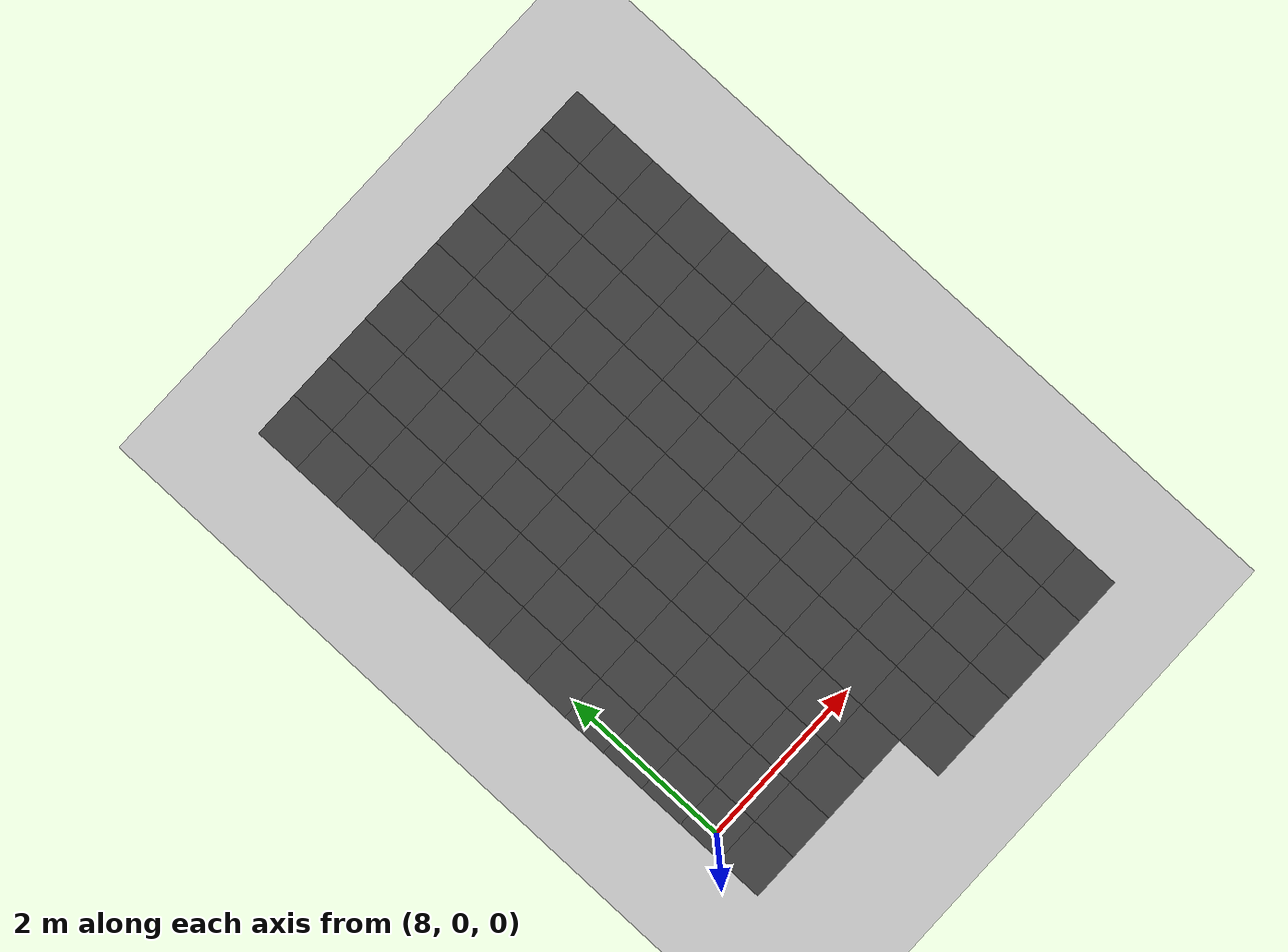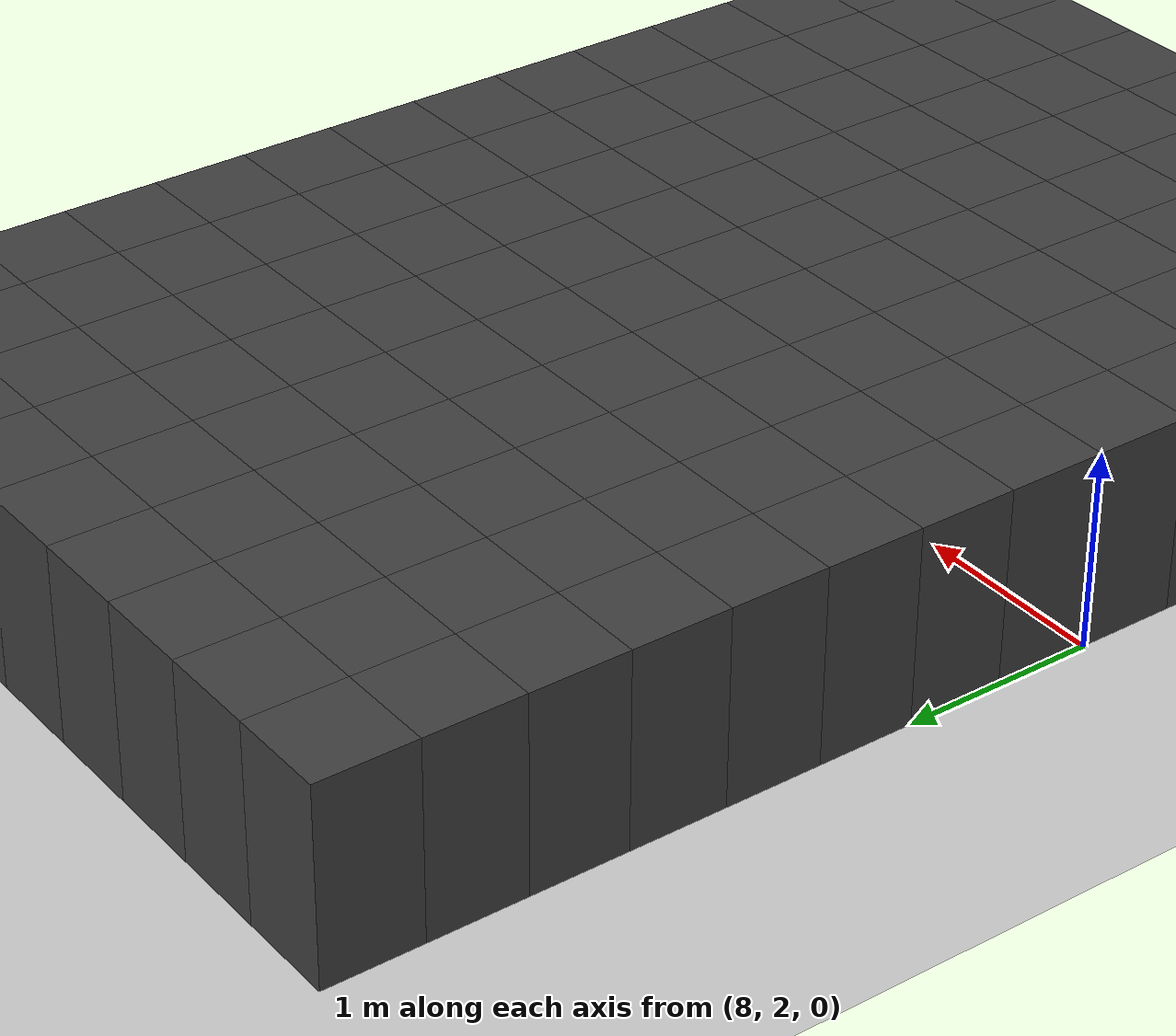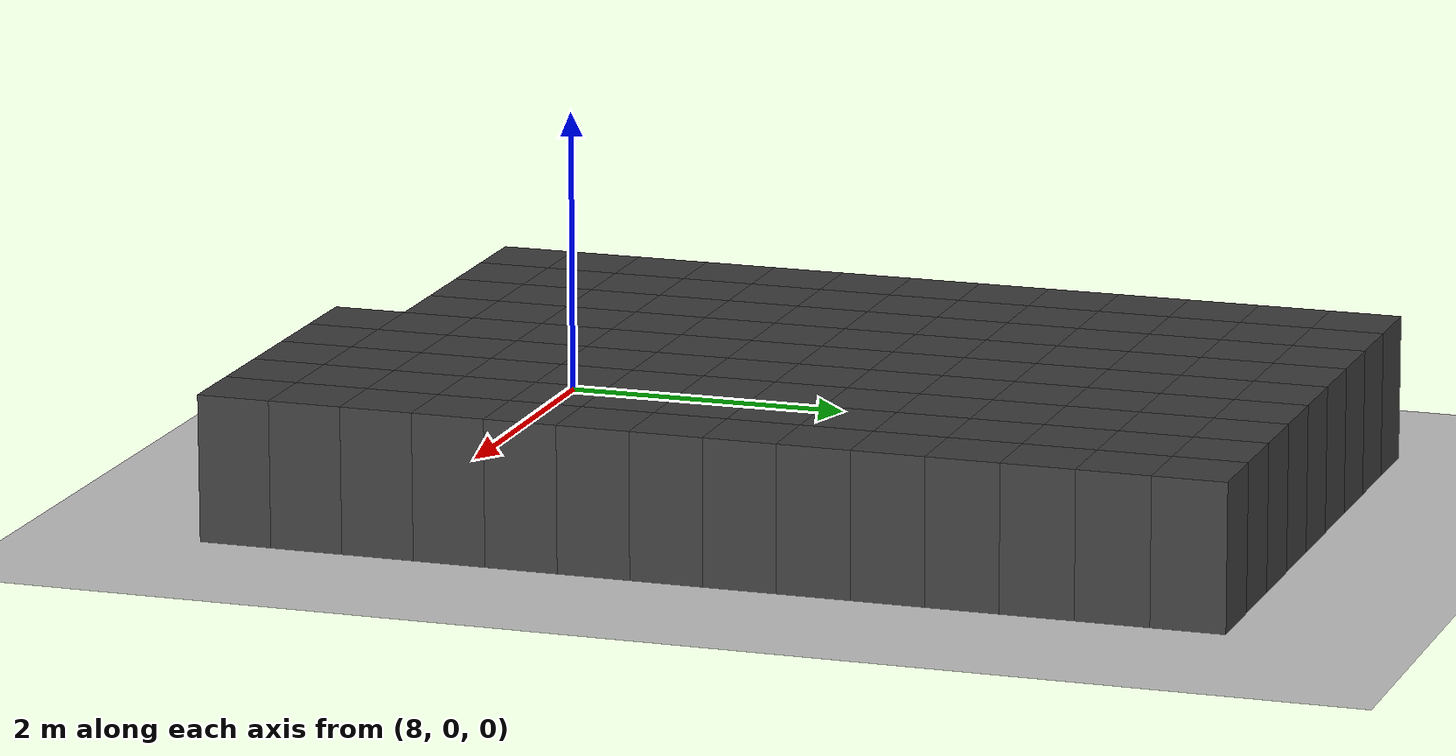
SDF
<sdf version="1.7">
 <world name="map_14510">
  <model name="ground_plane">
   <static>true</static>
   <link name="link">
    <collision name="collision">
     <geometry><plane><normal>0 0 1</normal><size>200 200</size></plane></geometry>
    </collision>
    <visual name="visual">
     <geometry><plane><normal>0 0 1</normal><size>200 200</size></plane></geometry>
     <material><ambient>0.8 0.8 0.8 1</ambient><diffuse>0.8 0.8 0.8 1</diffuse></material>
    </visual>
   </link>
  </model>
  <model name="maze_environment">
   <static>true</static>
   <link name="wall_442">
    <pose>8.250 5.750 0.500 0 0 0</pose>
    <collision name="col"><geometry><box><size>0.5 0.5 1.0</size></box></geometry></collision>
    <visual name="vis">
     <geometry><box><size>0.5 0.5 1.0</size></box></geometry>
     <material><ambient>0.15 0.15 0.15 1</ambient><diffuse>0.25 0.25 0.25 1</diffuse></material>
    </visual>
   </link>
   <link name="wall_443">
    <pose>8.750 5.750 0.500 0 0 0</pose>
    <collision name="col"><geometry><box><size>0.5 0.5 1.0</size></box></geometry></collision>
    <visual name="vis">
     <geometry><box><size>0.5 0.5 1.0</size></box></geometry>
     <material><ambient>0.15 0.15 0.15 1</ambient><diffuse>0.25 0.25 0.25 1</diffuse></material>
    </visual>
   </link>
   <link name="wall_444">
    <pose>9.250 5.750 0.500 0 0 0</pose>
    <collision name="col"><geometry><box><size>0.5 0.5 1.0</size></box></geometry></collision>
    <visual name="vis">
     <geometry><box><size>0.5 0.5 1.0</size></box></geometry>
     <material><ambient>0.15 0.15 0.15 1</ambient><diffuse>0.25 0.25 0.25 1</diffuse></material>
    </visual>
   </link>
   <link name="wall_445">
    <pose>9.750 5.750 0.500 0 0 0</pose>
    <collision name="col"><geometry><box><size>0.5 0.5 1.0</size></box></geometry></collision>
    <visual name="vis">
     <geometry><box><size>0.5 0.5 1.0</size></box></geometry>
     <material><ambient>0.15 0.15 0.15 1</ambient><diffuse>0.25 0.25 0.25 1</diffuse></material>
    </visual>
   </link>
   <link name="wall_446">
    <pose>10.250 5.750 0.500 0 0 0</pose>
    <collision name="col"><geometry><box><size>0.5 0.5 1.0</size></box></geometry></collision>
    <visual name="vis">
     <geometry><box><size>0.5 0.5 1.0</size></box></geometry>
     <material><ambient>0.15 0.15 0.15 1</ambient><diffuse>0.25 0.25 0.25 1</diffuse></material>
    </visual>
   </link>
   <link name="wall_447">
    <pose>10.750 5.750 0.500 0 0 0</pose>
    <collision name="col"><geometry><box><size>0.5 0.5 1.0</size></box></geometry></collision>
    <visual name="vis">
     <geometry><box><size>0.5 0.5 1.0</size></box></geometry>
     <material><ambient>0.15 0.15 0.15 1</ambient><diffuse>0.25 0.25 0.25 1</diffuse></material>
    </visual>
   </link>
   <link name="wall_448">
    <pose>11.250 5.750 0.500 0 0 0</pose>
    <collision name="col"><geometry><box><size>0.5 0.5 1.0</size></box></geometry></collision>
    <visual name="vis">
     <geometry><box><size>0.5 0.5 1.0</size></box></geometry>
     <material><ambient>0.15 0.15 0.15 1</ambient><diffuse>0.25 0.25 0.25 1</diffuse></material>
    </visual>
   </link>
   <link name="wall_449">
    <pose>11.750 5.750 0.500 0 0 0</pose>
    <collision name="col"><geometry><box><size>0.5 0.5 1.0</size></box></geometry></collision>
    <visual name="vis">
     <geometry><box><size>0.5 0.5 1.0</size></box></geometry>
     <material><ambient>0.15 0.15 0.15 1</ambient><diffuse>0.25 0.25 0.25 1</diffuse></material>
    </visual>
   </link>
   <link name="wall_450">
    <pose>12.250 5.750 0.500 0 0 0</pose>
    <collision name="col"><geometry><box><size>0.5 0.5 1.0</size></box></geometry></collision>
    <visual name="vis">
     <geometry><box><size>0.5 0.5 1.0</size></box></geometry>
     <material><ambient>0.15 0.15 0.15 1</ambient><diffuse>0.25 0.25 0.25 1</diffuse></material>
    </visual>
   </link>
   <link name="wall_475">
    <pose>8.250 5.250 0.500 0 0 0</pose>
    <collision name="col"><geometry><box><size>0.5 0.5 1.0</size></box></geometry></collision>
    <visual name="vis">
     <geometry><box><size>0.5 0.5 1.0</size></box></geometry>
     <material><ambient>0.15 0.15 0.15 1</ambient><diffuse>0.25 0.25 0.25 1</diffuse></material>
    </visual>
   </link>
   <link name="wall_476">
    <pose>8.750 5.250 0.500 0 0 0</pose>
    <collision name="col"><geometry><box><size>0.5 0.5 1.0</size></box></geometry></collision>
    <visual name="vis">
     <geometry><box><size>0.5 0.5 1.0</size></box></geometry>
     <material><ambient>0.15 0.15 0.15 1</ambient><diffuse>0.25 0.25 0.25 1</diffuse></material>
    </visual>
   </link>
   <link name="wall_477">
    <pose>9.250 5.250 0.500 0 0 0</pose>
    <collision name="col"><geometry><box><size>0.5 0.5 1.0</size></box></geometry></collision>
    <visual name="vis">
     <geometry><box><size>0.5 0.5 1.0</size></box></geometry>
     <material><ambient>0.15 0.15 0.15 1</ambient><diffuse>0.25 0.25 0.25 1</diffuse></material>
    </visual>
   </link>
   <link name="wall_478">
    <pose>9.750 5.250 0.500 0 0 0</pose>
    <collision name="col"><geometry><box><size>0.5 0.5 1.0</size></box></geometry></collision>
    <visual name="vis">
     <geometry><box><size>0.5 0.5 1.0</size></box></geometry>
     <material><ambient>0.15 0.15 0.15 1</ambient><diffuse>0.25 0.25 0.25 1</diffuse></material>
    </visual>
   </link>
   <link name="wall_479">
    <pose>10.250 5.250 0.500 0 0 0</pose>
    <collision name="col"><geometry><box><size>0.5 0.5 1.0</size></box></geometry></collision>
    <visual name="vis">
     <geometry><box><size>0.5 0.5 1.0</size></box></geometry>
     <material><ambient>0.15 0.15 0.15 1</ambient><diffuse>0.25 0.25 0.25 1</diffuse></material>
    </visual>
   </link>
   <link name="wall_480">
    <pose>10.750 5.250 0.500 0 0 0</pose>
    <collision name="col"><geometry><box><size>0.5 0.5 1.0</size></box></geometry></collision>
    <visual name="vis">
     <geometry><box><size>0.5 0.5 1.0</size></box></geometry>
     <material><ambient>0.15 0.15 0.15 1</ambient><diffuse>0.25 0.25 0.25 1</diffuse></material>
    </visual>
   </link>
   <link name="wall_481">
    <pose>11.250 5.250 0.500 0 0 0</pose>
    <collision name="col"><geometry><box><size>0.5 0.5 1.0</size></box></geometry></collision>
    <visual name="vis">
     <geometry><box><size>0.5 0.5 1.0</size></box></geometry>
     <material><ambient>0.15 0.15 0.15 1</ambient><diffuse>0.25 0.25 0.25 1</diffuse></material>
    </visual>
   </link>
   <link name="wall_482">
    <pose>11.750 5.250 0.500 0 0 0</pose>
    <collision name="col"><geometry><box><size>0.5 0.5 1.0</size></box></geometry></collision>
    <visual name="vis">
     <geometry><box><size>0.5 0.5 1.0</size></box></geometry>
     <material><ambient>0.15 0.15 0.15 1</ambient><diffuse>0.25 0.25 0.25 1</diffuse></material>
    </visual>
   </link>
   <link name="wall_483">
    <pose>12.250 5.250 0.500 0 0 0</pose>
    <collision name="col"><geometry><box><size>0.5 0.5 1.0</size></box></geometry></collision>
    <visual name="vis">
     <geometry><box><size>0.5 0.5 1.0</size></box></geometry>
     <material><ambient>0.15 0.15 0.15 1</ambient><diffuse>0.25 0.25 0.25 1</diffuse></material>
    </visual>
   </link>
   <link name="wall_509">
    <pose>8.250 4.750 0.500 0 0 0</pose>
    <collision name="col"><geometry><box><size>0.5 0.5 1.0</size></box></geometry></collision>
    <visual name="vis">
     <geometry><box><size>0.5 0.5 1.0</size></box></geometry>
     <material><ambient>0.15 0.15 0.15 1</ambient><diffuse>0.25 0.25 0.25 1</diffuse></material>
    </visual>
   </link>
   <link name="wall_510">
    <pose>8.750 4.750 0.500 0 0 0</pose>
    <collision name="col"><geometry><box><size>0.5 0.5 1.0</size></box></geometry></collision>
    <visual name="vis">
     <geometry><box><size>0.5 0.5 1.0</size></box></geometry>
     <material><ambient>0.15 0.15 0.15 1</ambient><diffuse>0.25 0.25 0.25 1</diffuse></material>
    </visual>
   </link>
   <link name="wall_511">
    <pose>9.250 4.750 0.500 0 0 0</pose>
    <collision name="col"><geometry><box><size>0.5 0.5 1.0</size></box></geometry></collision>
    <visual name="vis">
     <geometry><box><size>0.5 0.5 1.0</size></box></geometry>
     <material><ambient>0.15 0.15 0.15 1</ambient><diffuse>0.25 0.25 0.25 1</diffuse></material>
    </visual>
   </link>
   <link name="wall_512">
    <pose>9.750 4.750 0.500 0 0 0</pose>
    <collision name="col"><geometry><box><size>0.5 0.5 1.0</size></box></geometry></collision>
    <visual name="vis">
     <geometry><box><size>0.5 0.5 1.0</size></box></geometry>
     <material><ambient>0.15 0.15 0.15 1</ambient><diffuse>0.25 0.25 0.25 1</diffuse></material>
    </visual>
   </link>
   <link name="wall_513">
    <pose>10.250 4.750 0.500 0 0 0</pose>
    <collision name="col"><geometry><box><size>0.5 0.5 1.0</size></box></geometry></collision>
    <visual name="vis">
     <geometry><box><size>0.5 0.5 1.0</size></box></geometry>
     <material><ambient>0.15 0.15 0.15 1</ambient><diffuse>0.25 0.25 0.25 1</diffuse></material>
    </visual>
   </link>
   <link name="wall_514">
    <pose>10.750 4.750 0.500 0 0 0</pose>
    <collision name="col"><geometry><box><size>0.5 0.5 1.0</size></box></geometry></collision>
    <visual name="vis">
     <geometry><box><size>0.5 0.5 1.0</size></box></geometry>
     <material><ambient>0.15 0.15 0.15 1</ambient><diffuse>0.25 0.25 0.25 1</diffuse></material>
    </visual>
   </link>
   <link name="wall_515">
    <pose>11.250 4.750 0.500 0 0 0</pose>
    <collision name="col"><geometry><box><size>0.5 0.5 1.0</size></box></geometry></collision>
    <visual name="vis">
     <geometry><box><size>0.5 0.5 1.0</size></box></geometry>
     <material><ambient>0.15 0.15 0.15 1</ambient><diffuse>0.25 0.25 0.25 1</diffuse></material>
    </visual>
   </link>
   <link name="wall_516">
    <pose>11.750 4.750 0.500 0 0 0</pose>
    <collision name="col"><geometry><box><size>0.5 0.5 1.0</size></box></geometry></collision>
    <visual name="vis">
     <geometry><box><size>0.5 0.5 1.0</size></box></geometry>
     <material><ambient>0.15 0.15 0.15 1</ambient><diffuse>0.25 0.25 0.25 1</diffuse></material>
    </visual>
   </link>
   <link name="wall_517">
    <pose>12.250 4.750 0.500 0 0 0</pose>
    <collision name="col"><geometry><box><size>0.5 0.5 1.0</size></box></geometry></collision>
    <visual name="vis">
     <geometry><box><size>0.5 0.5 1.0</size></box></geometry>
     <material><ambient>0.15 0.15 0.15 1</ambient><diffuse>0.25 0.25 0.25 1</diffuse></material>
    </visual>
   </link>
   <link name="wall_543">
    <pose>8.250 4.250 0.500 0 0 0</pose>
    <collision name="col"><geometry><box><size>0.5 0.5 1.0</size></box></geometry></collision>
    <visual name="vis">
     <geometry><box><size>0.5 0.5 1.0</size></box></geometry>
     <material><ambient>0.15 0.15 0.15 1</ambient><diffuse>0.25 0.25 0.25 1</diffuse></material>
    </visual>
   </link>
   <link name="wall_544">
    <pose>8.750 4.250 0.500 0 0 0</pose>
    <collision name="col"><geometry><box><size>0.5 0.5 1.0</size></box></geometry></collision>
    <visual name="vis">
     <geometry><box><size>0.5 0.5 1.0</size></box></geometry>
     <material><ambient>0.15 0.15 0.15 1</ambient><diffuse>0.25 0.25 0.25 1</diffuse></material>
    </visual>
   </link>
   <link name="wall_545">
    <pose>9.250 4.250 0.500 0 0 0</pose>
    <collision name="col"><geometry><box><size>0.5 0.5 1.0</size></box></geometry></collision>
    <visual name="vis">
     <geometry><box><size>0.5 0.5 1.0</size></box></geometry>
     <material><ambient>0.15 0.15 0.15 1</ambient><diffuse>0.25 0.25 0.25 1</diffuse></material>
    </visual>
   </link>
   <link name="wall_546">
    <pose>9.750 4.250 0.500 0 0 0</pose>
    <collision name="col"><geometry><box><size>0.5 0.5 1.0</size></box></geometry></collision>
    <visual name="vis">
     <geometry><box><size>0.5 0.5 1.0</size></box></geometry>
     <material><ambient>0.15 0.15 0.15 1</ambient><diffuse>0.25 0.25 0.25 1</diffuse></material>
    </visual>
   </link>
   <link name="wall_547">
    <pose>10.250 4.250 0.500 0 0 0</pose>
    <collision name="col"><geometry><box><size>0.5 0.5 1.0</size></box></geometry></collision>
    <visual name="vis">
     <geometry><box><size>0.5 0.5 1.0</size></box></geometry>
     <material><ambient>0.15 0.15 0.15 1</ambient><diffuse>0.25 0.25 0.25 1</diffuse></material>
    </visual>
   </link>
   <link name="wall_548">
    <pose>10.750 4.250 0.500 0 0 0</pose>
    <collision name="col"><geometry><box><size>0.5 0.5 1.0</size></box></geometry></collision>
    <visual name="vis">
     <geometry><box><size>0.5 0.5 1.0</size></box></geometry>
     <material><ambient>0.15 0.15 0.15 1</ambient><diffuse>0.25 0.25 0.25 1</diffuse></material>
    </visual>
   </link>
   <link name="wall_549">
    <pose>11.250 4.250 0.500 0 0 0</pose>
    <collision name="col"><geometry><box><size>0.5 0.5 1.0</size></box></geometry></collision>
    <visual name="vis">
     <geometry><box><size>0.5 0.5 1.0</size></box></geometry>
     <material><ambient>0.15 0.15 0.15 1</ambient><diffuse>0.25 0.25 0.25 1</diffuse></material>
    </visual>
   </link>
   <link name="wall_550">
    <pose>11.750 4.250 0.500 0 0 0</pose>
    <collision name="col"><geometry><box><size>0.5 0.5 1.0</size></box></geometry></collision>
    <visual name="vis">
     <geometry><box><size>0.5 0.5 1.0</size></box></geometry>
     <material><ambient>0.15 0.15 0.15 1</ambient><diffuse>0.25 0.25 0.25 1</diffuse></material>
    </visual>
   </link>
   <link name="wall_551">
    <pose>12.250 4.250 0.500 0 0 0</pose>
    <collision name="col"><geometry><box><size>0.5 0.5 1.0</size></box></geometry></collision>
    <visual name="vis">
     <geometry><box><size>0.5 0.5 1.0</size></box></geometry>
     <material><ambient>0.15 0.15 0.15 1</ambient><diffuse>0.25 0.25 0.25 1</diffuse></material>
    </visual>
   </link>
   <link name="wall_585">
    <pose>8.250 3.750 0.500 0 0 0</pose>
    <collision name="col"><geometry><box><size>0.5 0.5 1.0</size></box></geometry></collision>
    <visual name="vis">
     <geometry><box><size>0.5 0.5 1.0</size></box></geometry>
     <material><ambient>0.15 0.15 0.15 1</ambient><diffuse>0.25 0.25 0.25 1</diffuse></material>
    </visual>
   </link>
   <link name="wall_586">
    <pose>8.750 3.750 0.500 0 0 0</pose>
    <collision name="col"><geometry><box><size>0.5 0.5 1.0</size></box></geometry></collision>
    <visual name="vis">
     <geometry><box><size>0.5 0.5 1.0</size></box></geometry>
     <material><ambient>0.15 0.15 0.15 1</ambient><diffuse>0.25 0.25 0.25 1</diffuse></material>
    </visual>
   </link>
   <link name="wall_587">
    <pose>9.250 3.750 0.500 0 0 0</pose>
    <collision name="col"><geometry><box><size>0.5 0.5 1.0</size></box></geometry></collision>
    <visual name="vis">
     <geometry><box><size>0.5 0.5 1.0</size></box></geometry>
     <material><ambient>0.15 0.15 0.15 1</ambient><diffuse>0.25 0.25 0.25 1</diffuse></material>
    </visual>
   </link>
   <link name="wall_588">
    <pose>9.750 3.750 0.500 0 0 0</pose>
    <collision name="col"><geometry><box><size>0.5 0.5 1.0</size></box></geometry></collision>
    <visual name="vis">
     <geometry><box><size>0.5 0.5 1.0</size></box></geometry>
     <material><ambient>0.15 0.15 0.15 1</ambient><diffuse>0.25 0.25 0.25 1</diffuse></material>
    </visual>
   </link>
   <link name="wall_589">
    <pose>10.250 3.750 0.500 0 0 0</pose>
    <collision name="col"><geometry><box><size>0.5 0.5 1.0</size></box></geometry></collision>
    <visual name="vis">
     <geometry><box><size>0.5 0.5 1.0</size></box></geometry>
     <material><ambient>0.15 0.15 0.15 1</ambient><diffuse>0.25 0.25 0.25 1</diffuse></material>
    </visual>
   </link>
   <link name="wall_590">
    <pose>10.750 3.750 0.500 0 0 0</pose>
    <collision name="col"><geometry><box><size>0.5 0.5 1.0</size></box></geometry></collision>
    <visual name="vis">
     <geometry><box><size>0.5 0.5 1.0</size></box></geometry>
     <material><ambient>0.15 0.15 0.15 1</ambient><diffuse>0.25 0.25 0.25 1</diffuse></material>
    </visual>
   </link>
   <link name="wall_591">
    <pose>11.250 3.750 0.500 0 0 0</pose>
    <collision name="col"><geometry><box><size>0.5 0.5 1.0</size></box></geometry></collision>
    <visual name="vis">
     <geometry><box><size>0.5 0.5 1.0</size></box></geometry>
     <material><ambient>0.15 0.15 0.15 1</ambient><diffuse>0.25 0.25 0.25 1</diffuse></material>
    </visual>
   </link>
   <link name="wall_592">
    <pose>11.750 3.750 0.500 0 0 0</pose>
    <collision name="col"><geometry><box><size>0.5 0.5 1.0</size></box></geometry></collision>
    <visual name="vis">
     <geometry><box><size>0.5 0.5 1.0</size></box></geometry>
     <material><ambient>0.15 0.15 0.15 1</ambient><diffuse>0.25 0.25 0.25 1</diffuse></material>
    </visual>
   </link>
   <link name="wall_593">
    <pose>12.250 3.750 0.500 0 0 0</pose>
    <collision name="col"><geometry><box><size>0.5 0.5 1.0</size></box></geometry></collision>
    <visual name="vis">
     <geometry><box><size>0.5 0.5 1.0</size></box></geometry>
     <material><ambient>0.15 0.15 0.15 1</ambient><diffuse>0.25 0.25 0.25 1</diffuse></material>
    </visual>
   </link>
   <link name="wall_625">
    <pose>8.250 3.250 0.500 0 0 0</pose>
    <collision name="col"><geometry><box><size>0.5 0.5 1.0</size></box></geometry></collision>
    <visual name="vis">
     <geometry><box><size>0.5 0.5 1.0</size></box></geometry>
     <material><ambient>0.15 0.15 0.15 1</ambient><diffuse>0.25 0.25 0.25 1</diffuse></material>
    </visual>
   </link>
   <link name="wall_626">
    <pose>8.750 3.250 0.500 0 0 0</pose>
    <collision name="col"><geometry><box><size>0.5 0.5 1.0</size></box></geometry></collision>
    <visual name="vis">
     <geometry><box><size>0.5 0.5 1.0</size></box></geometry>
     <material><ambient>0.15 0.15 0.15 1</ambient><diffuse>0.25 0.25 0.25 1</diffuse></material>
    </visual>
   </link>
   <link name="wall_627">
    <pose>9.250 3.250 0.500 0 0 0</pose>
    <collision name="col"><geometry><box><size>0.5 0.5 1.0</size></box></geometry></collision>
    <visual name="vis">
     <geometry><box><size>0.5 0.5 1.0</size></box></geometry>
     <material><ambient>0.15 0.15 0.15 1</ambient><diffuse>0.25 0.25 0.25 1</diffuse></material>
    </visual>
   </link>
   <link name="wall_628">
    <pose>9.750 3.250 0.500 0 0 0</pose>
    <collision name="col"><geometry><box><size>0.5 0.5 1.0</size></box></geometry></collision>
    <visual name="vis">
     <geometry><box><size>0.5 0.5 1.0</size></box></geometry>
     <material><ambient>0.15 0.15 0.15 1</ambient><diffuse>0.25 0.25 0.25 1</diffuse></material>
    </visual>
   </link>
   <link name="wall_629">
    <pose>10.250 3.250 0.500 0 0 0</pose>
    <collision name="col"><geometry><box><size>0.5 0.5 1.0</size></box></geometry></collision>
    <visual name="vis">
     <geometry><box><size>0.5 0.5 1.0</size></box></geometry>
     <material><ambient>0.15 0.15 0.15 1</ambient><diffuse>0.25 0.25 0.25 1</diffuse></material>
    </visual>
   </link>
   <link name="wall_630">
    <pose>10.750 3.250 0.500 0 0 0</pose>
    <collision name="col"><geometry><box><size>0.5 0.5 1.0</size></box></geometry></collision>
    <visual name="vis">
     <geometry><box><size>0.5 0.5 1.0</size></box></geometry>
     <material><ambient>0.15 0.15 0.15 1</ambient><diffuse>0.25 0.25 0.25 1</diffuse></material>
    </visual>
   </link>
   <link name="wall_631">
    <pose>11.250 3.250 0.500 0 0 0</pose>
    <collision name="col"><geometry><box><size>0.5 0.5 1.0</size></box></geometry></collision>
    <visual name="vis">
     <geometry><box><size>0.5 0.5 1.0</size></box></geometry>
     <material><ambient>0.15 0.15 0.15 1</ambient><diffuse>0.25 0.25 0.25 1</diffuse></material>
    </visual>
   </link>
   <link name="wall_632">
    <pose>11.750 3.250 0.500 0 0 0</pose>
    <collision name="col"><geometry><box><size>0.5 0.5 1.0</size></box></geometry></collision>
    <visual name="vis">
     <geometry><box><size>0.5 0.5 1.0</size></box></geometry>
     <material><ambient>0.15 0.15 0.15 1</ambient><diffuse>0.25 0.25 0.25 1</diffuse></material>
    </visual>
   </link>
   <link name="wall_633">
    <pose>12.250 3.250 0.500 0 0 0</pose>
    <collision name="col"><geometry><box><size>0.5 0.5 1.0</size></box></geometry></collision>
    <visual name="vis">
     <geometry><box><size>0.5 0.5 1.0</size></box></geometry>
     <material><ambient>0.15 0.15 0.15 1</ambient><diffuse>0.25 0.25 0.25 1</diffuse></material>
    </visual>
   </link>
   <link name="wall_667">
    <pose>8.250 2.750 0.500 0 0 0</pose>
    <collision name="col"><geometry><box><size>0.5 0.5 1.0</size></box></geometry></collision>
    <visual name="vis">
     <geometry><box><size>0.5 0.5 1.0</size></box></geometry>
     <material><ambient>0.15 0.15 0.15 1</ambient><diffuse>0.25 0.25 0.25 1</diffuse></material>
    </visual>
   </link>
   <link name="wall_668">
    <pose>8.750 2.750 0.500 0 0 0</pose>
    <collision name="col"><geometry><box><size>0.5 0.5 1.0</size></box></geometry></collision>
    <visual name="vis">
     <geometry><box><size>0.5 0.5 1.0</size></box></geometry>
     <material><ambient>0.15 0.15 0.15 1</ambient><diffuse>0.25 0.25 0.25 1</diffuse></material>
    </visual>
   </link>
   <link name="wall_669">
    <pose>9.250 2.750 0.500 0 0 0</pose>
    <collision name="col"><geometry><box><size>0.5 0.5 1.0</size></box></geometry></collision>
    <visual name="vis">
     <geometry><box><size>0.5 0.5 1.0</size></box></geometry>
     <material><ambient>0.15 0.15 0.15 1</ambient><diffuse>0.25 0.25 0.25 1</diffuse></material>
    </visual>
   </link>
   <link name="wall_670">
    <pose>9.750 2.750 0.500 0 0 0</pose>
    <collision name="col"><geometry><box><size>0.5 0.5 1.0</size></box></geometry></collision>
    <visual name="vis">
     <geometry><box><size>0.5 0.5 1.0</size></box></geometry>
     <material><ambient>0.15 0.15 0.15 1</ambient><diffuse>0.25 0.25 0.25 1</diffuse></material>
    </visual>
   </link>
   <link name="wall_671">
    <pose>10.250 2.750 0.500 0 0 0</pose>
    <collision name="col"><geometry><box><size>0.5 0.5 1.0</size></box></geometry></collision>
    <visual name="vis">
     <geometry><box><size>0.5 0.5 1.0</size></box></geometry>
     <material><ambient>0.15 0.15 0.15 1</ambient><diffuse>0.25 0.25 0.25 1</diffuse></material>
    </visual>
   </link>
   <link name="wall_672">
    <pose>10.750 2.750 0.500 0 0 0</pose>
    <collision name="col"><geometry><box><size>0.5 0.5 1.0</size></box></geometry></collision>
    <visual name="vis">
     <geometry><box><size>0.5 0.5 1.0</size></box></geometry>
     <material><ambient>0.15 0.15 0.15 1</ambient><diffuse>0.25 0.25 0.25 1</diffuse></material>
    </visual>
   </link>
   <link name="wall_673">
    <pose>11.250 2.750 0.500 0 0 0</pose>
    <collision name="col"><geometry><box><size>0.5 0.5 1.0</size></box></geometry></collision>
    <visual name="vis">
     <geometry><box><size>0.5 0.5 1.0</size></box></geometry>
     <material><ambient>0.15 0.15 0.15 1</ambient><diffuse>0.25 0.25 0.25 1</diffuse></material>
    </visual>
   </link>
   <link name="wall_674">
    <pose>11.750 2.750 0.500 0 0 0</pose>
    <collision name="col"><geometry><box><size>0.5 0.5 1.0</size></box></geometry></collision>
    <visual name="vis">
     <geometry><box><size>0.5 0.5 1.0</size></box></geometry>
     <material><ambient>0.15 0.15 0.15 1</ambient><diffuse>0.25 0.25 0.25 1</diffuse></material>
    </visual>
   </link>
   <link name="wall_675">
    <pose>12.250 2.750 0.500 0 0 0</pose>
    <collision name="col"><geometry><box><size>0.5 0.5 1.0</size></box></geometry></collision>
    <visual name="vis">
     <geometry><box><size>0.5 0.5 1.0</size></box></geometry>
     <material><ambient>0.15 0.15 0.15 1</ambient><diffuse>0.25 0.25 0.25 1</diffuse></material>
    </visual>
   </link>
   <link name="wall_705">
    <pose>8.250 2.250 0.500 0 0 0</pose>
    <collision name="col"><geometry><box><size>0.5 0.5 1.0</size></box></geometry></collision>
    <visual name="vis">
     <geometry><box><size>0.5 0.5 1.0</size></box></geometry>
     <material><ambient>0.15 0.15 0.15 1</ambient><diffuse>0.25 0.25 0.25 1</diffuse></material>
    </visual>
   </link>
   <link name="wall_706">
    <pose>8.750 2.250 0.500 0 0 0</pose>
    <collision name="col"><geometry><box><size>0.5 0.5 1.0</size></box></geometry></collision>
    <visual name="vis">
     <geometry><box><size>0.5 0.5 1.0</size></box></geometry>
     <material><ambient>0.15 0.15 0.15 1</ambient><diffuse>0.25 0.25 0.25 1</diffuse></material>
    </visual>
   </link>
   <link name="wall_707">
    <pose>9.250 2.250 0.500 0 0 0</pose>
    <collision name="col"><geometry><box><size>0.5 0.5 1.0</size></box></geometry></collision>
    <visual name="vis">
     <geometry><box><size>0.5 0.5 1.0</size></box></geometry>
     <material><ambient>0.15 0.15 0.15 1</ambient><diffuse>0.25 0.25 0.25 1</diffuse></material>
    </visual>
   </link>
   <link name="wall_708">
    <pose>9.750 2.250 0.500 0 0 0</pose>
    <collision name="col"><geometry><box><size>0.5 0.5 1.0</size></box></geometry></collision>
    <visual name="vis">
     <geometry><box><size>0.5 0.5 1.0</size></box></geometry>
     <material><ambient>0.15 0.15 0.15 1</ambient><diffuse>0.25 0.25 0.25 1</diffuse></material>
    </visual>
   </link>
   <link name="wall_709">
    <pose>10.250 2.250 0.500 0 0 0</pose>
    <collision name="col"><geometry><box><size>0.5 0.5 1.0</size></box></geometry></collision>
    <visual name="vis">
     <geometry><box><size>0.5 0.5 1.0</size></box></geometry>
     <material><ambient>0.15 0.15 0.15 1</ambient><diffuse>0.25 0.25 0.25 1</diffuse></material>
    </visual>
   </link>
   <link name="wall_710">
    <pose>10.750 2.250 0.500 0 0 0</pose>
    <collision name="col"><geometry><box><size>0.5 0.5 1.0</size></box></geometry></collision>
    <visual name="vis">
     <geometry><box><size>0.5 0.5 1.0</size></box></geometry>
     <material><ambient>0.15 0.15 0.15 1</ambient><diffuse>0.25 0.25 0.25 1</diffuse></material>
    </visual>
   </link>
   <link name="wall_711">
    <pose>11.250 2.250 0.500 0 0 0</pose>
    <collision name="col"><geometry><box><size>0.5 0.5 1.0</size></box></geometry></collision>
    <visual name="vis">
     <geometry><box><size>0.5 0.5 1.0</size></box></geometry>
     <material><ambient>0.15 0.15 0.15 1</ambient><diffuse>0.25 0.25 0.25 1</diffuse></material>
    </visual>
   </link>
   <link name="wall_712">
    <pose>11.750 2.250 0.500 0 0 0</pose>
    <collision name="col"><geometry><box><size>0.5 0.5 1.0</size></box></geometry></collision>
    <visual name="vis">
     <geometry><box><size>0.5 0.5 1.0</size></box></geometry>
     <material><ambient>0.15 0.15 0.15 1</ambient><diffuse>0.25 0.25 0.25 1</diffuse></material>
    </visual>
   </link>
   <link name="wall_713">
    <pose>12.250 2.250 0.500 0 0 0</pose>
    <collision name="col"><geometry><box><size>0.5 0.5 1.0</size></box></geometry></collision>
    <visual name="vis">
     <geometry><box><size>0.5 0.5 1.0</size></box></geometry>
     <material><ambient>0.15 0.15 0.15 1</ambient><diffuse>0.25 0.25 0.25 1</diffuse></material>
    </visual>
   </link>
   <link name="wall_743">
    <pose>8.250 1.750 0.500 0 0 0</pose>
    <collision name="col"><geometry><box><size>0.5 0.5 1.0</size></box></geometry></collision>
    <visual name="vis">
     <geometry><box><size>0.5 0.5 1.0</size></box></geometry>
     <material><ambient>0.15 0.15 0.15 1</ambient><diffuse>0.25 0.25 0.25 1</diffuse></material>
    </visual>
   </link>
   <link name="wall_744">
    <pose>8.750 1.750 0.500 0 0 0</pose>
    <collision name="col"><geometry><box><size>0.5 0.5 1.0</size></box></geometry></collision>
    <visual name="vis">
     <geometry><box><size>0.5 0.5 1.0</size></box></geometry>
     <material><ambient>0.15 0.15 0.15 1</ambient><diffuse>0.25 0.25 0.25 1</diffuse></material>
    </visual>
   </link>
   <link name="wall_745">
    <pose>9.250 1.750 0.500 0 0 0</pose>
    <collision name="col"><geometry><box><size>0.5 0.5 1.0</size></box></geometry></collision>
    <visual name="vis">
     <geometry><box><size>0.5 0.5 1.0</size></box></geometry>
     <material><ambient>0.15 0.15 0.15 1</ambient><diffuse>0.25 0.25 0.25 1</diffuse></material>
    </visual>
   </link>
   <link name="wall_746">
    <pose>9.750 1.750 0.500 0 0 0</pose>
    <collision name="col"><geometry><box><size>0.5 0.5 1.0</size></box></geometry></collision>
    <visual name="vis">
     <geometry><box><size>0.5 0.5 1.0</size></box></geometry>
     <material><ambient>0.15 0.15 0.15 1</ambient><diffuse>0.25 0.25 0.25 1</diffuse></material>
    </visual>
   </link>
   <link name="wall_747">
    <pose>10.250 1.750 0.500 0 0 0</pose>
    <collision name="col"><geometry><box><size>0.5 0.5 1.0</size></box></geometry></collision>
    <visual name="vis">
     <geometry><box><size>0.5 0.5 1.0</size></box></geometry>
     <material><ambient>0.15 0.15 0.15 1</ambient><diffuse>0.25 0.25 0.25 1</diffuse></material>
    </visual>
   </link>
   <link name="wall_748">
    <pose>10.750 1.750 0.500 0 0 0</pose>
    <collision name="col"><geometry><box><size>0.5 0.5 1.0</size></box></geometry></collision>
    <visual name="vis">
     <geometry><box><size>0.5 0.5 1.0</size></box></geometry>
     <material><ambient>0.15 0.15 0.15 1</ambient><diffuse>0.25 0.25 0.25 1</diffuse></material>
    </visual>
   </link>
   <link name="wall_749">
    <pose>11.250 1.750 0.500 0 0 0</pose>
    <collision name="col"><geometry><box><size>0.5 0.5 1.0</size></box></geometry></collision>
    <visual name="vis">
     <geometry><box><size>0.5 0.5 1.0</size></box></geometry>
     <material><ambient>0.15 0.15 0.15 1</ambient><diffuse>0.25 0.25 0.25 1</diffuse></material>
    </visual>
   </link>
   <link name="wall_750">
    <pose>11.750 1.750 0.500 0 0 0</pose>
    <collision name="col"><geometry><box><size>0.5 0.5 1.0</size></box></geometry></collision>
    <visual name="vis">
     <geometry><box><size>0.5 0.5 1.0</size></box></geometry>
     <material><ambient>0.15 0.15 0.15 1</ambient><diffuse>0.25 0.25 0.25 1</diffuse></material>
    </visual>
   </link>
   <link name="wall_751">
    <pose>12.250 1.750 0.500 0 0 0</pose>
    <collision name="col"><geometry><box><size>0.5 0.5 1.0</size></box></geometry></collision>
    <visual name="vis">
     <geometry><box><size>0.5 0.5 1.0</size></box></geometry>
     <material><ambient>0.15 0.15 0.15 1</ambient><diffuse>0.25 0.25 0.25 1</diffuse></material>
    </visual>
   </link>
   <link name="wall_780">
    <pose>8.250 1.250 0.500 0 0 0</pose>
    <collision name="col"><geometry><box><size>0.5 0.5 1.0</size></box></geometry></collision>
    <visual name="vis">
     <geometry><box><size>0.5 0.5 1.0</size></box></geometry>
     <material><ambient>0.15 0.15 0.15 1</ambient><diffuse>0.25 0.25 0.25 1</diffuse></material>
    </visual>
   </link>
   <link name="wall_781">
    <pose>8.750 1.250 0.500 0 0 0</pose>
    <collision name="col"><geometry><box><size>0.5 0.5 1.0</size></box></geometry></collision>
    <visual name="vis">
     <geometry><box><size>0.5 0.5 1.0</size></box></geometry>
     <material><ambient>0.15 0.15 0.15 1</ambient><diffuse>0.25 0.25 0.25 1</diffuse></material>
    </visual>
   </link>
   <link name="wall_782">
    <pose>9.250 1.250 0.500 0 0 0</pose>
    <collision name="col"><geometry><box><size>0.5 0.5 1.0</size></box></geometry></collision>
    <visual name="vis">
     <geometry><box><size>0.5 0.5 1.0</size></box></geometry>
     <material><ambient>0.15 0.15 0.15 1</ambient><diffuse>0.25 0.25 0.25 1</diffuse></material>
    </visual>
   </link>
   <link name="wall_783">
    <pose>9.750 1.250 0.500 0 0 0</pose>
    <collision name="col"><geometry><box><size>0.5 0.5 1.0</size></box></geometry></collision>
    <visual name="vis">
     <geometry><box><size>0.5 0.5 1.0</size></box></geometry>
     <material><ambient>0.15 0.15 0.15 1</ambient><diffuse>0.25 0.25 0.25 1</diffuse></material>
    </visual>
   </link>
   <link name="wall_784">
    <pose>10.250 1.250 0.500 0 0 0</pose>
    <collision name="col"><geometry><box><size>0.5 0.5 1.0</size></box></geometry></collision>
    <visual name="vis">
     <geometry><box><size>0.5 0.5 1.0</size></box></geometry>
     <material><ambient>0.15 0.15 0.15 1</ambient><diffuse>0.25 0.25 0.25 1</diffuse></material>
    </visual>
   </link>
   <link name="wall_785">
    <pose>10.750 1.250 0.500 0 0 0</pose>
    <collision name="col"><geometry><box><size>0.5 0.5 1.0</size></box></geometry></collision>
    <visual name="vis">
     <geometry><box><size>0.5 0.5 1.0</size></box></geometry>
     <material><ambient>0.15 0.15 0.15 1</ambient><diffuse>0.25 0.25 0.25 1</diffuse></material>
    </visual>
   </link>
   <link name="wall_786">
    <pose>11.250 1.250 0.500 0 0 0</pose>
    <collision name="col"><geometry><box><size>0.5 0.5 1.0</size></box></geometry></collision>
    <visual name="vis">
     <geometry><box><size>0.5 0.5 1.0</size></box></geometry>
     <material><ambient>0.15 0.15 0.15 1</ambient><diffuse>0.25 0.25 0.25 1</diffuse></material>
    </visual>
   </link>
   <link name="wall_787">
    <pose>11.750 1.250 0.500 0 0 0</pose>
    <collision name="col"><geometry><box><size>0.5 0.5 1.0</size></box></geometry></collision>
    <visual name="vis">
     <geometry><box><size>0.5 0.5 1.0</size></box></geometry>
     <material><ambient>0.15 0.15 0.15 1</ambient><diffuse>0.25 0.25 0.25 1</diffuse></material>
    </visual>
   </link>
   <link name="wall_788">
    <pose>12.250 1.250 0.500 0 0 0</pose>
    <collision name="col"><geometry><box><size>0.5 0.5 1.0</size></box></geometry></collision>
    <visual name="vis">
     <geometry><box><size>0.5 0.5 1.0</size></box></geometry>
     <material><ambient>0.15 0.15 0.15 1</ambient><diffuse>0.25 0.25 0.25 1</diffuse></material>
    </visual>
   </link>
   <link name="wall_817">
    <pose>8.250 0.750 0.500 0 0 0</pose>
    <collision name="col"><geometry><box><size>0.5 0.5 1.0</size></box></geometry></collision>
    <visual name="vis">
     <geometry><box><size>0.5 0.5 1.0</size></box></geometry>
     <material><ambient>0.15 0.15 0.15 1</ambient><diffuse>0.25 0.25 0.25 1</diffuse></material>
    </visual>
   </link>
   <link name="wall_818">
    <pose>8.750 0.750 0.500 0 0 0</pose>
    <collision name="col"><geometry><box><size>0.5 0.5 1.0</size></box></geometry></collision>
    <visual name="vis">
     <geometry><box><size>0.5 0.5 1.0</size></box></geometry>
     <material><ambient>0.15 0.15 0.15 1</ambient><diffuse>0.25 0.25 0.25 1</diffuse></material>
    </visual>
   </link>
   <link name="wall_819">
    <pose>9.250 0.750 0.500 0 0 0</pose>
    <collision name="col"><geometry><box><size>0.5 0.5 1.0</size></box></geometry></collision>
    <visual name="vis">
     <geometry><box><size>0.5 0.5 1.0</size></box></geometry>
     <material><ambient>0.15 0.15 0.15 1</ambient><diffuse>0.25 0.25 0.25 1</diffuse></material>
    </visual>
   </link>
   <link name="wall_820">
    <pose>9.750 0.750 0.500 0 0 0</pose>
    <collision name="col"><geometry><box><size>0.5 0.5 1.0</size></box></geometry></collision>
    <visual name="vis">
     <geometry><box><size>0.5 0.5 1.0</size></box></geometry>
     <material><ambient>0.15 0.15 0.15 1</ambient><diffuse>0.25 0.25 0.25 1</diffuse></material>
    </visual>
   </link>
   <link name="wall_821">
    <pose>10.250 0.750 0.500 0 0 0</pose>
    <collision name="col"><geometry><box><size>0.5 0.5 1.0</size></box></geometry></collision>
    <visual name="vis">
     <geometry><box><size>0.5 0.5 1.0</size></box></geometry>
     <material><ambient>0.15 0.15 0.15 1</ambient><diffuse>0.25 0.25 0.25 1</diffuse></material>
    </visual>
   </link>
   <link name="wall_822">
    <pose>10.750 0.750 0.500 0 0 0</pose>
    <collision name="col"><geometry><box><size>0.5 0.5 1.0</size></box></geometry></collision>
    <visual name="vis">
     <geometry><box><size>0.5 0.5 1.0</size></box></geometry>
     <material><ambient>0.15 0.15 0.15 1</ambient><diffuse>0.25 0.25 0.25 1</diffuse></material>
    </visual>
   </link>
   <link name="wall_823">
    <pose>11.250 0.750 0.500 0 0 0</pose>
    <collision name="col"><geometry><box><size>0.5 0.5 1.0</size></box></geometry></collision>
    <visual name="vis">
     <geometry><box><size>0.5 0.5 1.0</size></box></geometry>
     <material><ambient>0.15 0.15 0.15 1</ambient><diffuse>0.25 0.25 0.25 1</diffuse></material>
    </visual>
   </link>
   <link name="wall_824">
    <pose>11.750 0.750 0.500 0 0 0</pose>
    <collision name="col"><geometry><box><size>0.5 0.5 1.0</size></box></geometry></collision>
    <visual name="vis">
     <geometry><box><size>0.5 0.5 1.0</size></box></geometry>
     <material><ambient>0.15 0.15 0.15 1</ambient><diffuse>0.25 0.25 0.25 1</diffuse></material>
    </visual>
   </link>
   <link name="wall_825">
    <pose>12.250 0.750 0.500 0 0 0</pose>
    <collision name="col"><geometry><box><size>0.5 0.5 1.0</size></box></geometry></collision>
    <visual name="vis">
     <geometry><box><size>0.5 0.5 1.0</size></box></geometry>
     <material><ambient>0.15 0.15 0.15 1</ambient><diffuse>0.25 0.25 0.25 1</diffuse></material>
    </visual>
   </link>
   <link name="wall_854">
    <pose>8.250 0.250 0.500 0 0 0</pose>
    <collision name="col"><geometry><box><size>0.5 0.5 1.0</size></box></geometry></collision>
    <visual name="vis">
     <geometry><box><size>0.5 0.5 1.0</size></box></geometry>
     <material><ambient>0.15 0.15 0.15 1</ambient><diffuse>0.25 0.25 0.25 1</diffuse></material>
    </visual>
   </link>
   <link name="wall_855">
    <pose>8.750 0.250 0.500 0 0 0</pose>
    <collision name="col"><geometry><box><size>0.5 0.5 1.0</size></box></geometry></collision>
    <visual name="vis">
     <geometry><box><size>0.5 0.5 1.0</size></box></geometry>
     <material><ambient>0.15 0.15 0.15 1</ambient><diffuse>0.25 0.25 0.25 1</diffuse></material>
    </visual>
   </link>
   <link name="wall_856">
    <pose>9.250 0.250 0.500 0 0 0</pose>
    <collision name="col"><geometry><box><size>0.5 0.5 1.0</size></box></geometry></collision>
    <visual name="vis">
     <geometry><box><size>0.5 0.5 1.0</size></box></geometry>
     <material><ambient>0.15 0.15 0.15 1</ambient><diffuse>0.25 0.25 0.25 1</diffuse></material>
    </visual>
   </link>
   <link name="wall_857">
    <pose>9.750 0.250 0.500 0 0 0</pose>
    <collision name="col"><geometry><box><size>0.5 0.5 1.0</size></box></geometry></collision>
    <visual name="vis">
     <geometry><box><size>0.5 0.5 1.0</size></box></geometry>
     <material><ambient>0.15 0.15 0.15 1</ambient><diffuse>0.25 0.25 0.25 1</diffuse></material>
    </visual>
   </link>
   <link name="wall_858">
    <pose>10.250 0.250 0.500 0 0 0</pose>
    <collision name="col"><geometry><box><size>0.5 0.5 1.0</size></box></geometry></collision>
    <visual name="vis">
     <geometry><box><size>0.5 0.5 1.0</size></box></geometry>
     <material><ambient>0.15 0.15 0.15 1</ambient><diffuse>0.25 0.25 0.25 1</diffuse></material>
    </visual>
   </link>
   <link name="wall_859">
    <pose>10.750 0.250 0.500 0 0 0</pose>
    <collision name="col"><geometry><box><size>0.5 0.5 1.0</size></box></geometry></collision>
    <visual name="vis">
     <geometry><box><size>0.5 0.5 1.0</size></box></geometry>
     <material><ambient>0.15 0.15 0.15 1</ambient><diffuse>0.25 0.25 0.25 1</diffuse></material>
    </visual>
   </link>
   <link name="wall_860">
    <pose>11.250 0.250 0.500 0 0 0</pose>
    <collision name="col"><geometry><box><size>0.5 0.5 1.0</size></box></geometry></collision>
    <visual name="vis">
     <geometry><box><size>0.5 0.5 1.0</size></box></geometry>
     <material><ambient>0.15 0.15 0.15 1</ambient><diffuse>0.25 0.25 0.25 1</diffuse></material>
    </visual>
   </link>
   <link name="wall_861">
    <pose>11.750 0.250 0.500 0 0 0</pose>
    <collision name="col"><geometry><box><size>0.5 0.5 1.0</size></box></geometry></collision>
    <visual name="vis">
     <geometry><box><size>0.5 0.5 1.0</size></box></geometry>
     <material><ambient>0.15 0.15 0.15 1</ambient><diffuse>0.25 0.25 0.25 1</diffuse></material>
    </visual>
   </link>
   <link name="wall_862">
    <pose>12.250 0.250 0.500 0 0 0</pose>
    <collision name="col"><geometry><box><size>0.5 0.5 1.0</size></box></geometry></collision>
    <visual name="vis">
     <geometry><box><size>0.5 0.5 1.0</size></box></geometry>
     <material><ambient>0.15 0.15 0.15 1</ambient><diffuse>0.25 0.25 0.25 1</diffuse></material>
    </visual>
   </link>
   <link name="wall_895">
    <pose>8.250 -0.250 0.500 0 0 0</pose>
    <collision name="col"><geometry><box><size>0.5 0.5 1.0</size></box></geometry></collision>
    <visual name="vis">
     <geometry><box><size>0.5 0.5 1.0</size></box></geometry>
     <material><ambient>0.15 0.15 0.15 1</ambient><diffuse>0.25 0.25 0.25 1</diffuse></material>
    </visual>
   </link>
   <link name="wall_896">
    <pose>8.750 -0.250 0.500 0 0 0</pose>
    <collision name="col"><geometry><box><size>0.5 0.5 1.0</size></box></geometry></collision>
    <visual name="vis">
     <geometry><box><size>0.5 0.5 1.0</size></box></geometry>
     <material><ambient>0.15 0.15 0.15 1</ambient><diffuse>0.25 0.25 0.25 1</diffuse></material>
    </visual>
   </link>
   <link name="wall_897">
    <pose>9.250 -0.250 0.500 0 0 0</pose>
    <collision name="col"><geometry><box><size>0.5 0.5 1.0</size></box></geometry></collision>
    <visual name="vis">
     <geometry><box><size>0.5 0.5 1.0</size></box></geometry>
     <material><ambient>0.15 0.15 0.15 1</ambient><diffuse>0.25 0.25 0.25 1</diffuse></material>
    </visual>
   </link>
   <link name="wall_898">
    <pose>9.750 -0.250 0.500 0 0 0</pose>
    <collision name="col"><geometry><box><size>0.5 0.5 1.0</size></box></geometry></collision>
    <visual name="vis">
     <geometry><box><size>0.5 0.5 1.0</size></box></geometry>
     <material><ambient>0.15 0.15 0.15 1</ambient><diffuse>0.25 0.25 0.25 1</diffuse></material>
    </visual>
   </link>
   <link name="wall_899">
    <pose>10.250 -0.250 0.500 0 0 0</pose>
    <collision name="col"><geometry><box><size>0.5 0.5 1.0</size></box></geometry></collision>
    <visual name="vis">
     <geometry><box><size>0.5 0.5 1.0</size></box></geometry>
     <material><ambient>0.15 0.15 0.15 1</ambient><diffuse>0.25 0.25 0.25 1</diffuse></material>
    </visual>
   </link>
   <link name="wall_900">
    <pose>10.750 -0.250 0.500 0 0 0</pose>
    <collision name="col"><geometry><box><size>0.5 0.5 1.0</size></box></geometry></collision>
    <visual name="vis">
     <geometry><box><size>0.5 0.5 1.0</size></box></geometry>
     <material><ambient>0.15 0.15 0.15 1</ambient><diffuse>0.25 0.25 0.25 1</diffuse></material>
    </visual>
   </link>
   <link name="wall_901">
    <pose>11.250 -0.250 0.500 0 0 0</pose>
    <collision name="col"><geometry><box><size>0.5 0.5 1.0</size></box></geometry></collision>
    <visual name="vis">
     <geometry><box><size>0.5 0.5 1.0</size></box></geometry>
     <material><ambient>0.15 0.15 0.15 1</ambient><diffuse>0.25 0.25 0.25 1</diffuse></material>
    </visual>
   </link>
   <link name="wall_902">
    <pose>11.750 -0.250 0.500 0 0 0</pose>
    <collision name="col"><geometry><box><size>0.5 0.5 1.0</size></box></geometry></collision>
    <visual name="vis">
     <geometry><box><size>0.5 0.5 1.0</size></box></geometry>
     <material><ambient>0.15 0.15 0.15 1</ambient><diffuse>0.25 0.25 0.25 1</diffuse></material>
    </visual>
   </link>
   <link name="wall_903">
    <pose>12.250 -0.250 0.500 0 0 0</pose>
    <collision name="col"><geometry><box><size>0.5 0.5 1.0</size></box></geometry></collision>
    <visual name="vis">
     <geometry><box><size>0.5 0.5 1.0</size></box></geometry>
     <material><ambient>0.15 0.15 0.15 1</ambient><diffuse>0.25 0.25 0.25 1</diffuse></material>
    </visual>
   </link>
   <link name="wall_934">
    <pose>10.250 -0.750 0.500 0 0 0</pose>
    <collision name="col"><geometry><box><size>0.5 0.5 1.0</size></box></geometry></collision>
    <visual name="vis">
     <geometry><box><size>0.5 0.5 1.0</size></box></geometry>
     <material><ambient>0.15 0.15 0.15 1</ambient><diffuse>0.25 0.25 0.25 1</diffuse></material>
    </visual>
   </link>
   <link name="wall_935">
    <pose>10.750 -0.750 0.500 0 0 0</pose>
    <collision name="col"><geometry><box><size>0.5 0.5 1.0</size></box></geometry></collision>
    <visual name="vis">
     <geometry><box><size>0.5 0.5 1.0</size></box></geometry>
     <material><ambient>0.15 0.15 0.15 1</ambient><diffuse>0.25 0.25 0.25 1</diffuse></material>
    </visual>
   </link>
   <link name="wall_936">
    <pose>11.250 -0.750 0.500 0 0 0</pose>
    <collision name="col"><geometry><box><size>0.5 0.5 1.0</size></box></geometry></collision>
    <visual name="vis">
     <geometry><box><size>0.5 0.5 1.0</size></box></geometry>
     <material><ambient>0.15 0.15 0.15 1</ambient><diffuse>0.25 0.25 0.25 1</diffuse></material>
    </visual>
   </link>
   <link name="wall_937">
    <pose>11.750 -0.750 0.500 0 0 0</pose>
    <collision name="col"><geometry><box><size>0.5 0.5 1.0</size></box></geometry></collision>
    <visual name="vis">
     <geometry><box><size>0.5 0.5 1.0</size></box></geometry>
     <material><ambient>0.15 0.15 0.15 1</ambient><diffuse>0.25 0.25 0.25 1</diffuse></material>
    </visual>
   </link>
   <link name="wall_938">
    <pose>12.250 -0.750 0.500 0 0 0</pose>
    <collision name="col"><geometry><box><size>0.5 0.5 1.0</size></box></geometry></collision>
    <visual name="vis">
     <geometry><box><size>0.5 0.5 1.0</size></box></geometry>
     <material><ambient>0.15 0.15 0.15 1</ambient><diffuse>0.25 0.25 0.25 1</diffuse></material>
    </visual>
   </link>
  </model>
 </world>
</sdf>
